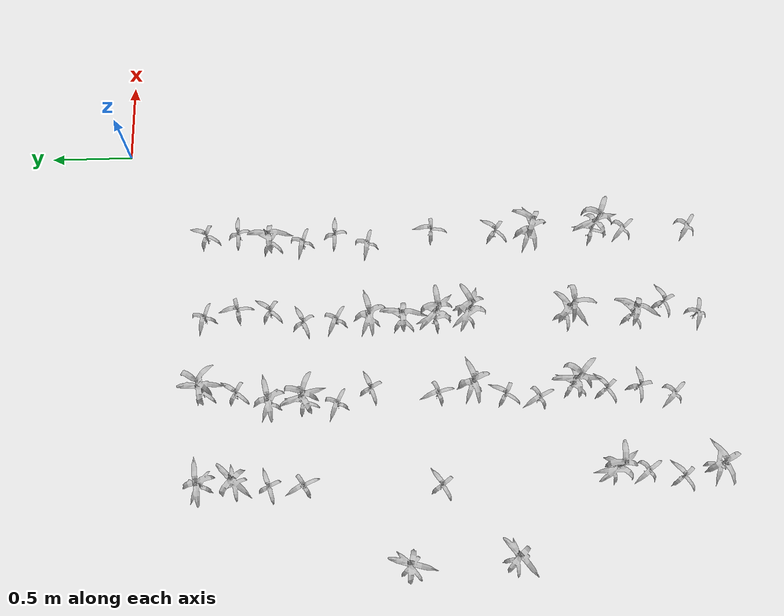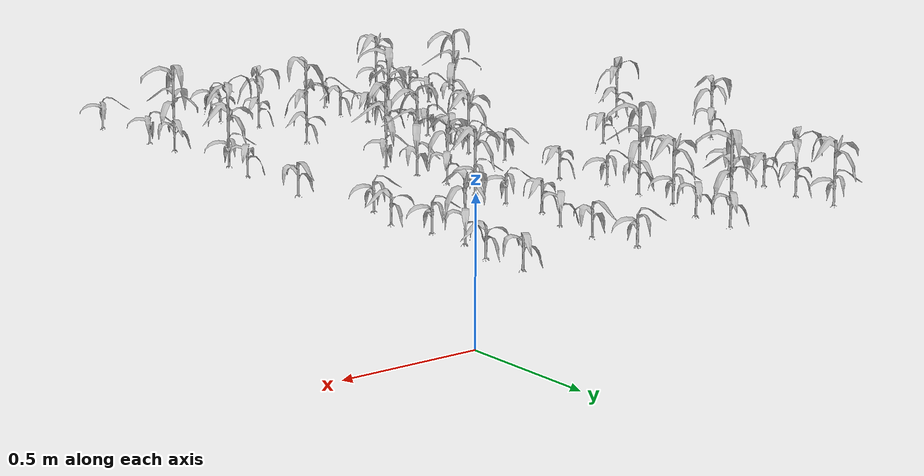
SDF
<sdf version="1.7">
 <world name="default">
  <model name="maize_-2.56067068068158_-2.2649999999999997">
   <static>1</static>
   <link name="link">
    <inertial>
     <mass>0.2</mass>
     <inertia>
      <ixx>0.166667</ixx>
      <ixy>0</ixy>
      <ixz>0</ixz>
      <iyy>0.166667</iyy>
      <iyz>0</iyz>
      <izz>0.166667</izz>
     </inertia>
    </inertial>
    <collision name="collision">
     <geometry><mesh><uri>model://corn_4/meshes/corn.dae</uri><scale>0.25 0.25 0.25</scale></mesh></geometry>
     <surface>
      <friction><ode><mu>0</mu><mu2>0</mu2></ode></friction>
      <contact><ode><kp>0</kp><kd>0</kd><max_vel>0</max_vel><min_depth>0.002</min_depth></ode></contact>
     </surface>
    </collision>
    <visual name="visual">
     <geometry><mesh><uri>model://corn_4/meshes/corn.dae</uri><scale>0.25 0.25 0.25</scale></mesh></geometry>
    </visual>
    <velocity_decay><linear>0</linear><angular>0</angular></velocity_decay>
   </link>
   <pose>-2.56067 -2.265 0.05 0 -0 0.150638</pose>
  </model>
  <model name="maize_-2.587947464671602_-1.6799999999999997">
   <static>1</static>
   <link name="link">
    <inertial>
     <mass>0.2</mass>
     <inertia>
      <ixx>0.166667</ixx>
      <ixy>0</ixy>
      <ixz>0</ixz>
      <iyy>0.166667</iyy>
      <iyz>0</iyz>
      <izz>0.166667</izz>
     </inertia>
    </inertial>
    <collision name="collision">
     <geometry><mesh><uri>model://corn_4/meshes/corn.dae</uri><scale>0.25 0.25 0.25</scale></mesh></geometry>
     <surface>
      <friction><ode><mu>0</mu><mu2>0</mu2></ode></friction>
      <contact><ode><kp>0</kp><kd>0</kd><max_vel>0</max_vel><min_depth>0.002</min_depth></ode></contact>
     </surface>
    </collision>
    <visual name="visual">
     <geometry><mesh><uri>model://corn_4/meshes/corn.dae</uri><scale>0.25 0.25 0.25</scale></mesh></geometry>
    </visual>
    <velocity_decay><linear>0</linear><angular>0</angular></velocity_decay>
   </link>
   <pose>-2.58795 -1.68 0.05 0 -0 0.765115</pose>
  </model>
  <model name="maize_-2.0695158106688814_-3.4349999999999996">
   <static>1</static>
   <link name="link">
    <inertial>
     <mass>0.2</mass>
     <inertia>
      <ixx>0.166667</ixx>
      <ixy>0</ixy>
      <ixz>0</ixz>
      <iyy>0.166667</iyy>
      <iyz>0</iyz>
      <izz>0.166667</izz>
     </inertia>
    </inertial>
    <collision name="collision">
     <geometry><mesh><uri>model://corn_4/meshes/corn.dae</uri><scale>0.25 0.25 0.25</scale></mesh></geometry>
     <surface>
      <friction><ode><mu>0</mu><mu2>0</mu2></ode></friction>
      <contact><ode><kp>0</kp><kd>0</kd><max_vel>0</max_vel><min_depth>0.002</min_depth></ode></contact>
     </surface>
    </collision>
    <visual name="visual">
     <geometry><mesh><uri>model://corn_4/meshes/corn.dae</uri><scale>0.25 0.25 0.25</scale></mesh></geometry>
    </visual>
    <velocity_decay><linear>0</linear><angular>0</angular></velocity_decay>
   </link>
   <pose>-2.06952 -3.435 0.05 0 -0 2.97833</pose>
  </model>
  <model name="maize_-2.1245888871789407_-3.2399999999999998">
   <static>1</static>
   <link name="link">
    <inertial>
     <mass>0.2</mass>
     <inertia>
      <ixx>0.166667</ixx>
      <ixy>0</ixy>
      <ixz>0</ixz>
      <iyy>0.166667</iyy>
      <iyz>0</iyz>
      <izz>0.166667</izz>
     </inertia>
    </inertial>
    <collision name="collision">
     <geometry><mesh><uri>model://corn_3/meshes/corn.dae</uri><scale>0.25 0.25 0.25</scale></mesh></geometry>
     <surface>
      <friction><ode><mu>0</mu><mu2>0</mu2></ode></friction>
      <contact><ode><kp>0</kp><kd>0</kd><max_vel>0</max_vel><min_depth>0.002</min_depth></ode></contact>
     </surface>
    </collision>
    <visual name="visual">
     <geometry><mesh><uri>model://corn_3/meshes/corn.dae</uri><scale>0.25 0.25 0.25</scale></mesh></geometry>
    </visual>
    <velocity_decay><linear>0</linear><angular>0</angular></velocity_decay>
   </link>
   <pose>-2.12459 -3.24 0.05 0 -0 0.665279</pose>
  </model>
  <model name="maize_-2.087982063824759_-3.045">
   <static>1</static>
   <link name="link">
    <inertial>
     <mass>0.2</mass>
     <inertia>
      <ixx>0.166667</ixx>
      <ixy>0</ixy>
      <ixz>0</ixz>
      <iyy>0.166667</iyy>
      <iyz>0</iyz>
      <izz>0.166667</izz>
     </inertia>
    </inertial>
    <collision name="collision">
     <geometry><mesh><uri>model://corn_3/meshes/corn.dae</uri><scale>0.25 0.25 0.25</scale></mesh></geometry>
     <surface>
      <friction><ode><mu>0</mu><mu2>0</mu2></ode></friction>
      <contact><ode><kp>0</kp><kd>0</kd><max_vel>0</max_vel><min_depth>0.002</min_depth></ode></contact>
     </surface>
    </collision>
    <visual name="visual">
     <geometry><mesh><uri>model://corn_3/meshes/corn.dae</uri><scale>0.25 0.25 0.25</scale></mesh></geometry>
    </visual>
    <velocity_decay><linear>0</linear><angular>0</angular></velocity_decay>
   </link>
   <pose>-2.08798 -3.045 0.05 0 -0 2.29323</pose>
  </model>
  <model name="maize_-2.0855864860959166_-2.8499999999999996">
   <static>1</static>
   <link name="link">
    <inertial>
     <mass>0.2</mass>
     <inertia>
      <ixx>0.166667</ixx>
      <ixy>0</ixy>
      <ixz>0</ixz>
      <iyy>0.166667</iyy>
      <iyz>0</iyz>
      <izz>0.166667</izz>
     </inertia>
    </inertial>
    <collision name="collision">
     <geometry><mesh><uri>model://corn_5/meshes/corn.dae</uri><scale>0.25 0.25 0.25</scale></mesh></geometry>
     <surface>
      <friction><ode><mu>0</mu><mu2>0</mu2></ode></friction>
      <contact><ode><kp>0</kp><kd>0</kd><max_vel>0</max_vel><min_depth>0.002</min_depth></ode></contact>
     </surface>
    </collision>
    <visual name="visual">
     <geometry><mesh><uri>model://corn_5/meshes/corn.dae</uri><scale>0.25 0.25 0.25</scale></mesh></geometry>
    </visual>
    <velocity_decay><linear>0</linear><angular>0</angular></velocity_decay>
   </link>
   <pose>-2.08559 -2.85 0.05 0 -0 1.66857</pose>
  </model>
  <model name="maize_-2.1451543387953897_-1.8749999999999996">
   <static>1</static>
   <link name="link">
    <inertial>
     <mass>0.2</mass>
     <inertia>
      <ixx>0.166667</ixx>
      <ixy>0</ixy>
      <ixz>0</ixz>
      <iyy>0.166667</iyy>
      <iyz>0</iyz>
      <izz>0.166667</izz>
     </inertia>
    </inertial>
    <collision name="collision">
     <geometry><mesh><uri>model://corn_3/meshes/corn.dae</uri><scale>0.25 0.25 0.25</scale></mesh></geometry>
     <surface>
      <friction><ode><mu>0</mu><mu2>0</mu2></ode></friction>
      <contact><ode><kp>0</kp><kd>0</kd><max_vel>0</max_vel><min_depth>0.002</min_depth></ode></contact>
     </surface>
    </collision>
    <visual name="visual">
     <geometry><mesh><uri>model://corn_3/meshes/corn.dae</uri><scale>0.25 0.25 0.25</scale></mesh></geometry>
    </visual>
    <velocity_decay><linear>0</linear><angular>0</angular></velocity_decay>
   </link>
   <pose>-2.14515 -1.875 0.05 0 -0 0.592628</pose>
  </model>
  <model name="maize_-2.1297416763319843_-1.0949999999999998">
   <static>1</static>
   <link name="link">
    <inertial>
     <mass>0.2</mass>
     <inertia>
      <ixx>0.166667</ixx>
      <ixy>0</ixy>
      <ixz>0</ixz>
      <iyy>0.166667</iyy>
      <iyz>0</iyz>
      <izz>0.166667</izz>
     </inertia>
    </inertial>
    <collision name="collision">
     <geometry><mesh><uri>model://corn_3/meshes/corn.dae</uri><scale>0.25 0.25 0.25</scale></mesh></geometry>
     <surface>
      <friction><ode><mu>0</mu><mu2>0</mu2></ode></friction>
      <contact><ode><kp>0</kp><kd>0</kd><max_vel>0</max_vel><min_depth>0.002</min_depth></ode></contact>
     </surface>
    </collision>
    <visual name="visual">
     <geometry><mesh><uri>model://corn_3/meshes/corn.dae</uri><scale>0.25 0.25 0.25</scale></mesh></geometry>
    </visual>
    <velocity_decay><linear>0</linear><angular>0</angular></velocity_decay>
   </link>
   <pose>-2.12974 -1.095 0.05 0 -0 2.08309</pose>
  </model>
  <model name="maize_-2.133350030080976_-0.8999999999999995">
   <static>1</static>
   <link name="link">
    <inertial>
     <mass>0.2</mass>
     <inertia>
      <ixx>0.166667</ixx>
      <ixy>0</ixy>
      <ixz>0</ixz>
      <iyy>0.166667</iyy>
      <iyz>0</iyz>
      <izz>0.166667</izz>
     </inertia>
    </inertial>
    <collision name="collision">
     <geometry><mesh><uri>model://corn_3/meshes/corn.dae</uri><scale>0.25 0.25 0.25</scale></mesh></geometry>
     <surface>
      <friction><ode><mu>0</mu><mu2>0</mu2></ode></friction>
      <contact><ode><kp>0</kp><kd>0</kd><max_vel>0</max_vel><min_depth>0.002</min_depth></ode></contact>
     </surface>
    </collision>
    <visual name="visual">
     <geometry><mesh><uri>model://corn_3/meshes/corn.dae</uri><scale>0.25 0.25 0.25</scale></mesh></geometry>
    </visual>
    <velocity_decay><linear>0</linear><angular>0</angular></velocity_decay>
   </link>
   <pose>-2.13335 -0.9 0.05 0 -0 0.362663</pose>
  </model>
  <model name="maize_-2.1117130886331696_-0.7050000000000001">
   <static>1</static>
   <link name="link">
    <inertial>
     <mass>0.2</mass>
     <inertia>
      <ixx>0.166667</ixx>
      <ixy>0</ixy>
      <ixz>0</ixz>
      <iyy>0.166667</iyy>
      <iyz>0</iyz>
      <izz>0.166667</izz>
     </inertia>
    </inertial>
    <collision name="collision">
     <geometry><mesh><uri>model://corn_4/meshes/corn.dae</uri><scale>0.25 0.25 0.25</scale></mesh></geometry>
     <surface>
      <friction><ode><mu>0</mu><mu2>0</mu2></ode></friction>
      <contact><ode><kp>0</kp><kd>0</kd><max_vel>0</max_vel><min_depth>0.002</min_depth></ode></contact>
     </surface>
    </collision>
    <visual name="visual">
     <geometry><mesh><uri>model://corn_4/meshes/corn.dae</uri><scale>0.25 0.25 0.25</scale></mesh></geometry>
    </visual>
    <velocity_decay><linear>0</linear><angular>0</angular></velocity_decay>
   </link>
   <pose>-2.11171 -0.705 0.05 0 -0 0.257828</pose>
  </model>
  <model name="maize_-2.1176374083535032_-0.5099999999999998">
   <static>1</static>
   <link name="link">
    <inertial>
     <mass>0.2</mass>
     <inertia>
      <ixx>0.166667</ixx>
      <ixy>0</ixy>
      <ixz>0</ixz>
      <iyy>0.166667</iyy>
      <iyz>0</iyz>
      <izz>0.166667</izz>
     </inertia>
    </inertial>
    <collision name="collision">
     <geometry><mesh><uri>model://corn_4/meshes/corn.dae</uri><scale>0.25 0.25 0.25</scale></mesh></geometry>
     <surface>
      <friction><ode><mu>0</mu><mu2>0</mu2></ode></friction>
      <contact><ode><kp>0</kp><kd>0</kd><max_vel>0</max_vel><min_depth>0.002</min_depth></ode></contact>
     </surface>
    </collision>
    <visual name="visual">
     <geometry><mesh><uri>model://corn_4/meshes/corn.dae</uri><scale>0.25 0.25 0.25</scale></mesh></geometry>
    </visual>
    <velocity_decay><linear>0</linear><angular>0</angular></velocity_decay>
   </link>
   <pose>-2.11764 -0.51 0.05 0 -0 2.72134</pose>
  </model>
  <model name="maize_-1.6435329429710228_-3.2399999999999998">
   <static>1</static>
   <link name="link">
    <inertial>
     <mass>0.2</mass>
     <inertia>
      <ixx>0.166667</ixx>
      <ixy>0</ixy>
      <ixz>0</ixz>
      <iyy>0.166667</iyy>
      <iyz>0</iyz>
      <izz>0.166667</izz>
     </inertia>
    </inertial>
    <collision name="collision">
     <geometry><mesh><uri>model://corn_3/meshes/corn.dae</uri><scale>0.25 0.25 0.25</scale></mesh></geometry>
     <surface>
      <friction><ode><mu>0</mu><mu2>0</mu2></ode></friction>
      <contact><ode><kp>0</kp><kd>0</kd><max_vel>0</max_vel><min_depth>0.002</min_depth></ode></contact>
     </surface>
    </collision>
    <visual name="visual">
     <geometry><mesh><uri>model://corn_3/meshes/corn.dae</uri><scale>0.25 0.25 0.25</scale></mesh></geometry>
    </visual>
    <velocity_decay><linear>0</linear><angular>0</angular></velocity_decay>
   </link>
   <pose>-1.64353 -3.24 0.05 0 -0 2.4443</pose>
  </model>
  <model name="maize_-1.5930801601935072_-3.045">
   <static>1</static>
   <link name="link">
    <inertial>
     <mass>0.2</mass>
     <inertia>
      <ixx>0.166667</ixx>
      <ixy>0</ixy>
      <ixz>0</ixz>
      <iyy>0.166667</iyy>
      <iyz>0</iyz>
      <izz>0.166667</izz>
     </inertia>
    </inertial>
    <collision name="collision">
     <geometry><mesh><uri>model://corn_3/meshes/corn.dae</uri><scale>0.25 0.25 0.25</scale></mesh></geometry>
     <surface>
      <friction><ode><mu>0</mu><mu2>0</mu2></ode></friction>
      <contact><ode><kp>0</kp><kd>0</kd><max_vel>0</max_vel><min_depth>0.002</min_depth></ode></contact>
     </surface>
    </collision>
    <visual name="visual">
     <geometry><mesh><uri>model://corn_3/meshes/corn.dae</uri><scale>0.25 0.25 0.25</scale></mesh></geometry>
    </visual>
    <velocity_decay><linear>0</linear><angular>0</angular></velocity_decay>
   </link>
   <pose>-1.59308 -3.045 0.05 0 -0 0.115923</pose>
  </model>
  <model name="maize_-1.606580619061356_-2.8499999999999996">
   <static>1</static>
   <link name="link">
    <inertial>
     <mass>0.2</mass>
     <inertia>
      <ixx>0.166667</ixx>
      <ixy>0</ixy>
      <ixz>0</ixz>
      <iyy>0.166667</iyy>
      <iyz>0</iyz>
      <izz>0.166667</izz>
     </inertia>
    </inertial>
    <collision name="collision">
     <geometry><mesh><uri>model://corn_3/meshes/corn.dae</uri><scale>0.25 0.25 0.25</scale></mesh></geometry>
     <surface>
      <friction><ode><mu>0</mu><mu2>0</mu2></ode></friction>
      <contact><ode><kp>0</kp><kd>0</kd><max_vel>0</max_vel><min_depth>0.002</min_depth></ode></contact>
     </surface>
    </collision>
    <visual name="visual">
     <geometry><mesh><uri>model://corn_3/meshes/corn.dae</uri><scale>0.25 0.25 0.25</scale></mesh></geometry>
    </visual>
    <velocity_decay><linear>0</linear><angular>0</angular></velocity_decay>
   </link>
   <pose>-1.60658 -2.85 0.05 0 -0 0.667125</pose>
  </model>
  <model name="maize_-1.5811275023182443_-2.655">
   <static>1</static>
   <link name="link">
    <inertial>
     <mass>0.2</mass>
     <inertia>
      <ixx>0.166667</ixx>
      <ixy>0</ixy>
      <ixz>0</ixz>
      <iyy>0.166667</iyy>
      <iyz>0</iyz>
      <izz>0.166667</izz>
     </inertia>
    </inertial>
    <collision name="collision">
     <geometry><mesh><uri>model://corn_5/meshes/corn.dae</uri><scale>0.25 0.25 0.25</scale></mesh></geometry>
     <surface>
      <friction><ode><mu>0</mu><mu2>0</mu2></ode></friction>
      <contact><ode><kp>0</kp><kd>0</kd><max_vel>0</max_vel><min_depth>0.002</min_depth></ode></contact>
     </surface>
    </collision>
    <visual name="visual">
     <geometry><mesh><uri>model://corn_5/meshes/corn.dae</uri><scale>0.25 0.25 0.25</scale></mesh></geometry>
    </visual>
    <velocity_decay><linear>0</linear><angular>0</angular></velocity_decay>
   </link>
   <pose>-1.58113 -2.655 0.05 0 -0 1.00223</pose>
  </model>
  <model name="maize_-1.6492030710428547_-2.46">
   <static>1</static>
   <link name="link">
    <inertial>
     <mass>0.2</mass>
     <inertia>
      <ixx>0.166667</ixx>
      <ixy>0</ixy>
      <ixz>0</ixz>
      <iyy>0.166667</iyy>
      <iyz>0</iyz>
      <izz>0.166667</izz>
     </inertia>
    </inertial>
    <collision name="collision">
     <geometry><mesh><uri>model://corn_3/meshes/corn.dae</uri><scale>0.25 0.25 0.25</scale></mesh></geometry>
     <surface>
      <friction><ode><mu>0</mu><mu2>0</mu2></ode></friction>
      <contact><ode><kp>0</kp><kd>0</kd><max_vel>0</max_vel><min_depth>0.002</min_depth></ode></contact>
     </surface>
    </collision>
    <visual name="visual">
     <geometry><mesh><uri>model://corn_3/meshes/corn.dae</uri><scale>0.25 0.25 0.25</scale></mesh></geometry>
    </visual>
    <velocity_decay><linear>0</linear><angular>0</angular></velocity_decay>
   </link>
   <pose>-1.6492 -2.46 0.05 0 -0 2.14681</pose>
  </model>
  <model name="maize_-1.6261241393688017_-2.2649999999999997">
   <static>1</static>
   <link name="link">
    <inertial>
     <mass>0.2</mass>
     <inertia>
      <ixx>0.166667</ixx>
      <ixy>0</ixy>
      <ixz>0</ixz>
      <iyy>0.166667</iyy>
      <iyz>0</iyz>
      <izz>0.166667</izz>
     </inertia>
    </inertial>
    <collision name="collision">
     <geometry><mesh><uri>model://corn_3/meshes/corn.dae</uri><scale>0.25 0.25 0.25</scale></mesh></geometry>
     <surface>
      <friction><ode><mu>0</mu><mu2>0</mu2></ode></friction>
      <contact><ode><kp>0</kp><kd>0</kd><max_vel>0</max_vel><min_depth>0.002</min_depth></ode></contact>
     </surface>
    </collision>
    <visual name="visual">
     <geometry><mesh><uri>model://corn_3/meshes/corn.dae</uri><scale>0.25 0.25 0.25</scale></mesh></geometry>
    </visual>
    <velocity_decay><linear>0</linear><angular>0</angular></velocity_decay>
   </link>
   <pose>-1.62612 -2.265 0.05 0 -0 1.05773</pose>
  </model>
  <model name="maize_-1.5709288194309647_-2.07">
   <static>1</static>
   <link name="link">
    <inertial>
     <mass>0.2</mass>
     <inertia>
      <ixx>0.166667</ixx>
      <ixy>0</ixy>
      <ixz>0</ixz>
      <iyy>0.166667</iyy>
      <iyz>0</iyz>
      <izz>0.166667</izz>
     </inertia>
    </inertial>
    <collision name="collision">
     <geometry><mesh><uri>model://corn_4/meshes/corn.dae</uri><scale>0.25 0.25 0.25</scale></mesh></geometry>
     <surface>
      <friction><ode><mu>0</mu><mu2>0</mu2></ode></friction>
      <contact><ode><kp>0</kp><kd>0</kd><max_vel>0</max_vel><min_depth>0.002</min_depth></ode></contact>
     </surface>
    </collision>
    <visual name="visual">
     <geometry><mesh><uri>model://corn_4/meshes/corn.dae</uri><scale>0.25 0.25 0.25</scale></mesh></geometry>
    </visual>
    <velocity_decay><linear>0</linear><angular>0</angular></velocity_decay>
   </link>
   <pose>-1.57093 -2.07 0.05 0 -0 2.8418</pose>
  </model>
  <model name="maize_-1.6097170149461688_-1.8749999999999996">
   <static>1</static>
   <link name="link">
    <inertial>
     <mass>0.2</mass>
     <inertia>
      <ixx>0.166667</ixx>
      <ixy>0</ixy>
      <ixz>0</ixz>
      <iyy>0.166667</iyy>
      <iyz>0</iyz>
      <izz>0.166667</izz>
     </inertia>
    </inertial>
    <collision name="collision">
     <geometry><mesh><uri>model://corn_3/meshes/corn.dae</uri><scale>0.25 0.25 0.25</scale></mesh></geometry>
     <surface>
      <friction><ode><mu>0</mu><mu2>0</mu2></ode></friction>
      <contact><ode><kp>0</kp><kd>0</kd><max_vel>0</max_vel><min_depth>0.002</min_depth></ode></contact>
     </surface>
    </collision>
    <visual name="visual">
     <geometry><mesh><uri>model://corn_3/meshes/corn.dae</uri><scale>0.25 0.25 0.25</scale></mesh></geometry>
    </visual>
    <velocity_decay><linear>0</linear><angular>0</angular></velocity_decay>
   </link>
   <pose>-1.60972 -1.875 0.05 0 -0 1.94583</pose>
  </model>
  <model name="maize_-1.5762306279719571_-1.4849999999999999">
   <static>1</static>
   <link name="link">
    <inertial>
     <mass>0.2</mass>
     <inertia>
      <ixx>0.166667</ixx>
      <ixy>0</ixy>
      <ixz>0</ixz>
      <iyy>0.166667</iyy>
      <iyz>0</iyz>
      <izz>0.166667</izz>
     </inertia>
    </inertial>
    <collision name="collision">
     <geometry><mesh><uri>model://corn_3/meshes/corn.dae</uri><scale>0.25 0.25 0.25</scale></mesh></geometry>
     <surface>
      <friction><ode><mu>0</mu><mu2>0</mu2></ode></friction>
      <contact><ode><kp>0</kp><kd>0</kd><max_vel>0</max_vel><min_depth>0.002</min_depth></ode></contact>
     </surface>
    </collision>
    <visual name="visual">
     <geometry><mesh><uri>model://corn_3/meshes/corn.dae</uri><scale>0.25 0.25 0.25</scale></mesh></geometry>
    </visual>
    <velocity_decay><linear>0</linear><angular>0</angular></velocity_decay>
   </link>
   <pose>-1.57623 -1.485 0.05 0 -0 0.40922</pose>
  </model>
  <model name="maize_-1.6579267696293596_-1.2899999999999996">
   <static>1</static>
   <link name="link">
    <inertial>
     <mass>0.2</mass>
     <inertia>
      <ixx>0.166667</ixx>
      <ixy>0</ixy>
      <ixz>0</ixz>
      <iyy>0.166667</iyy>
      <iyz>0</iyz>
      <izz>0.166667</izz>
     </inertia>
    </inertial>
    <collision name="collision">
     <geometry><mesh><uri>model://corn_3/meshes/corn.dae</uri><scale>0.25 0.25 0.25</scale></mesh></geometry>
     <surface>
      <friction><ode><mu>0</mu><mu2>0</mu2></ode></friction>
      <contact><ode><kp>0</kp><kd>0</kd><max_vel>0</max_vel><min_depth>0.002</min_depth></ode></contact>
     </surface>
    </collision>
    <visual name="visual">
     <geometry><mesh><uri>model://corn_3/meshes/corn.dae</uri><scale>0.25 0.25 0.25</scale></mesh></geometry>
    </visual>
    <velocity_decay><linear>0</linear><angular>0</angular></velocity_decay>
   </link>
   <pose>-1.65793 -1.29 0.05 0 -0 2.78606</pose>
  </model>
  <model name="maize_-1.6508238048924078_-1.0949999999999998">
   <static>1</static>
   <link name="link">
    <inertial>
     <mass>0.2</mass>
     <inertia>
      <ixx>0.166667</ixx>
      <ixy>0</ixy>
      <ixz>0</ixz>
      <iyy>0.166667</iyy>
      <iyz>0</iyz>
      <izz>0.166667</izz>
     </inertia>
    </inertial>
    <collision name="collision">
     <geometry><mesh><uri>model://corn_5/meshes/corn.dae</uri><scale>0.25 0.25 0.25</scale></mesh></geometry>
     <surface>
      <friction><ode><mu>0</mu><mu2>0</mu2></ode></friction>
      <contact><ode><kp>0</kp><kd>0</kd><max_vel>0</max_vel><min_depth>0.002</min_depth></ode></contact>
     </surface>
    </collision>
    <visual name="visual">
     <geometry><mesh><uri>model://corn_5/meshes/corn.dae</uri><scale>0.25 0.25 0.25</scale></mesh></geometry>
    </visual>
    <velocity_decay><linear>0</linear><angular>0</angular></velocity_decay>
   </link>
   <pose>-1.65082 -1.095 0.05 0 -0 1.38203</pose>
  </model>
  <model name="maize_-1.6518631181832415_-0.8999999999999995">
   <static>1</static>
   <link name="link">
    <inertial>
     <mass>0.2</mass>
     <inertia>
      <ixx>0.166667</ixx>
      <ixy>0</ixy>
      <ixz>0</ixz>
      <iyy>0.166667</iyy>
      <iyz>0</iyz>
      <izz>0.166667</izz>
     </inertia>
    </inertial>
    <collision name="collision">
     <geometry><mesh><uri>model://corn_4/meshes/corn.dae</uri><scale>0.25 0.25 0.25</scale></mesh></geometry>
     <surface>
      <friction><ode><mu>0</mu><mu2>0</mu2></ode></friction>
      <contact><ode><kp>0</kp><kd>0</kd><max_vel>0</max_vel><min_depth>0.002</min_depth></ode></contact>
     </surface>
    </collision>
    <visual name="visual">
     <geometry><mesh><uri>model://corn_4/meshes/corn.dae</uri><scale>0.25 0.25 0.25</scale></mesh></geometry>
    </visual>
    <velocity_decay><linear>0</linear><angular>0</angular></velocity_decay>
   </link>
   <pose>-1.65186 -0.9 0.05 0 -0 2.79874</pose>
  </model>
  <model name="maize_-1.5871818498414694_-0.7050000000000001">
   <static>1</static>
   <link name="link">
    <inertial>
     <mass>0.2</mass>
     <inertia>
      <ixx>0.166667</ixx>
      <ixy>0</ixy>
      <ixz>0</ixz>
      <iyy>0.166667</iyy>
      <iyz>0</iyz>
      <izz>0.166667</izz>
     </inertia>
    </inertial>
    <collision name="collision">
     <geometry><mesh><uri>model://corn_3/meshes/corn.dae</uri><scale>0.25 0.25 0.25</scale></mesh></geometry>
     <surface>
      <friction><ode><mu>0</mu><mu2>0</mu2></ode></friction>
      <contact><ode><kp>0</kp><kd>0</kd><max_vel>0</max_vel><min_depth>0.002</min_depth></ode></contact>
     </surface>
    </collision>
    <visual name="visual">
     <geometry><mesh><uri>model://corn_3/meshes/corn.dae</uri><scale>0.25 0.25 0.25</scale></mesh></geometry>
    </visual>
    <velocity_decay><linear>0</linear><angular>0</angular></velocity_decay>
   </link>
   <pose>-1.58718 -0.705 0.05 0 -0 0.982695</pose>
  </model>
  <model name="maize_-1.5757505179692748_-0.5099999999999998">
   <static>1</static>
   <link name="link">
    <inertial>
     <mass>0.2</mass>
     <inertia>
      <ixx>0.166667</ixx>
      <ixy>0</ixy>
      <ixz>0</ixz>
      <iyy>0.166667</iyy>
      <iyz>0</iyz>
      <izz>0.166667</izz>
     </inertia>
    </inertial>
    <collision name="collision">
     <geometry><mesh><uri>model://corn_5/meshes/corn.dae</uri><scale>0.25 0.25 0.25</scale></mesh></geometry>
     <surface>
      <friction><ode><mu>0</mu><mu2>0</mu2></ode></friction>
      <contact><ode><kp>0</kp><kd>0</kd><max_vel>0</max_vel><min_depth>0.002</min_depth></ode></contact>
     </surface>
    </collision>
    <visual name="visual">
     <geometry><mesh><uri>model://corn_5/meshes/corn.dae</uri><scale>0.25 0.25 0.25</scale></mesh></geometry>
    </visual>
    <velocity_decay><linear>0</linear><angular>0</angular></velocity_decay>
   </link>
   <pose>-1.57575 -0.51 0.05 0 -0 1.0254</pose>
  </model>
  <model name="maize_-1.1536177686863416_-3.4349999999999996">
   <static>1</static>
   <link name="link">
    <inertial>
     <mass>0.2</mass>
     <inertia>
      <ixx>0.166667</ixx>
      <ixy>0</ixy>
      <ixz>0</ixz>
      <iyy>0.166667</iyy>
      <iyz>0</iyz>
      <izz>0.166667</izz>
     </inertia>
    </inertial>
    <collision name="collision">
     <geometry><mesh><uri>model://corn_3/meshes/corn.dae</uri><scale>0.25 0.25 0.25</scale></mesh></geometry>
     <surface>
      <friction><ode><mu>0</mu><mu2>0</mu2></ode></friction>
      <contact><ode><kp>0</kp><kd>0</kd><max_vel>0</max_vel><min_depth>0.002</min_depth></ode></contact>
     </surface>
    </collision>
    <visual name="visual">
     <geometry><mesh><uri>model://corn_3/meshes/corn.dae</uri><scale>0.25 0.25 0.25</scale></mesh></geometry>
    </visual>
    <velocity_decay><linear>0</linear><angular>0</angular></velocity_decay>
   </link>
   <pose>-1.15362 -3.435 0.05 0 -0 3.01735</pose>
  </model>
  <model name="maize_-1.0809615215099735_-3.2399999999999998">
   <static>1</static>
   <link name="link">
    <inertial>
     <mass>0.2</mass>
     <inertia>
      <ixx>0.166667</ixx>
      <ixy>0</ixy>
      <ixz>0</ixz>
      <iyy>0.166667</iyy>
      <iyz>0</iyz>
      <izz>0.166667</izz>
     </inertia>
    </inertial>
    <collision name="collision">
     <geometry><mesh><uri>model://corn_3/meshes/corn.dae</uri><scale>0.25 0.25 0.25</scale></mesh></geometry>
     <surface>
      <friction><ode><mu>0</mu><mu2>0</mu2></ode></friction>
      <contact><ode><kp>0</kp><kd>0</kd><max_vel>0</max_vel><min_depth>0.002</min_depth></ode></contact>
     </surface>
    </collision>
    <visual name="visual">
     <geometry><mesh><uri>model://corn_3/meshes/corn.dae</uri><scale>0.25 0.25 0.25</scale></mesh></geometry>
    </visual>
    <velocity_decay><linear>0</linear><angular>0</angular></velocity_decay>
   </link>
   <pose>-1.08096 -3.24 0.05 0 -0 0.403806</pose>
  </model>
  <model name="maize_-1.1584517408194646_-3.045">
   <static>1</static>
   <link name="link">
    <inertial>
     <mass>0.2</mass>
     <inertia>
      <ixx>0.166667</ixx>
      <ixy>0</ixy>
      <ixz>0</ixz>
      <iyy>0.166667</iyy>
      <iyz>0</iyz>
      <izz>0.166667</izz>
     </inertia>
    </inertial>
    <collision name="collision">
     <geometry><mesh><uri>model://corn_4/meshes/corn.dae</uri><scale>0.25 0.25 0.25</scale></mesh></geometry>
     <surface>
      <friction><ode><mu>0</mu><mu2>0</mu2></ode></friction>
      <contact><ode><kp>0</kp><kd>0</kd><max_vel>0</max_vel><min_depth>0.002</min_depth></ode></contact>
     </surface>
    </collision>
    <visual name="visual">
     <geometry><mesh><uri>model://corn_4/meshes/corn.dae</uri><scale>0.25 0.25 0.25</scale></mesh></geometry>
    </visual>
    <velocity_decay><linear>0</linear><angular>0</angular></velocity_decay>
   </link>
   <pose>-1.15845 -3.045 0.05 0 -0 0.610277</pose>
  </model>
  <model name="maize_-1.1507786983029846_-2.655">
   <static>1</static>
   <link name="link">
    <inertial>
     <mass>0.2</mass>
     <inertia>
      <ixx>0.166667</ixx>
      <ixy>0</ixy>
      <ixz>0</ixz>
      <iyy>0.166667</iyy>
      <iyz>0</iyz>
      <izz>0.166667</izz>
     </inertia>
    </inertial>
    <collision name="collision">
     <geometry><mesh><uri>model://corn_5/meshes/corn.dae</uri><scale>0.25 0.25 0.25</scale></mesh></geometry>
     <surface>
      <friction><ode><mu>0</mu><mu2>0</mu2></ode></friction>
      <contact><ode><kp>0</kp><kd>0</kd><max_vel>0</max_vel><min_depth>0.002</min_depth></ode></contact>
     </surface>
    </collision>
    <visual name="visual">
     <geometry><mesh><uri>model://corn_5/meshes/corn.dae</uri><scale>0.25 0.25 0.25</scale></mesh></geometry>
    </visual>
    <velocity_decay><linear>0</linear><angular>0</angular></velocity_decay>
   </link>
   <pose>-1.15078 -2.655 0.05 0 -0 0.150068</pose>
  </model>
  <model name="maize_-1.1468928019338749_-2.07">
   <static>1</static>
   <link name="link">
    <inertial>
     <mass>0.2</mass>
     <inertia>
      <ixx>0.166667</ixx>
      <ixy>0</ixy>
      <ixz>0</ixz>
      <iyy>0.166667</iyy>
      <iyz>0</iyz>
      <izz>0.166667</izz>
     </inertia>
    </inertial>
    <collision name="collision">
     <geometry><mesh><uri>model://corn_5/meshes/corn.dae</uri><scale>0.25 0.25 0.25</scale></mesh></geometry>
     <surface>
      <friction><ode><mu>0</mu><mu2>0</mu2></ode></friction>
      <contact><ode><kp>0</kp><kd>0</kd><max_vel>0</max_vel><min_depth>0.002</min_depth></ode></contact>
     </surface>
    </collision>
    <visual name="visual">
     <geometry><mesh><uri>model://corn_5/meshes/corn.dae</uri><scale>0.25 0.25 0.25</scale></mesh></geometry>
    </visual>
    <velocity_decay><linear>0</linear><angular>0</angular></velocity_decay>
   </link>
   <pose>-1.14689 -2.07 0.05 0 -0 2.23971</pose>
  </model>
  <model name="maize_-1.1604203284265557_-1.8749999999999996">
   <static>1</static>
   <link name="link">
    <inertial>
     <mass>0.2</mass>
     <inertia>
      <ixx>0.166667</ixx>
      <ixy>0</ixy>
      <ixz>0</ixz>
      <iyy>0.166667</iyy>
      <iyz>0</iyz>
      <izz>0.166667</izz>
     </inertia>
    </inertial>
    <collision name="collision">
     <geometry><mesh><uri>model://corn_5/meshes/corn.dae</uri><scale>0.25 0.25 0.25</scale></mesh></geometry>
     <surface>
      <friction><ode><mu>0</mu><mu2>0</mu2></ode></friction>
      <contact><ode><kp>0</kp><kd>0</kd><max_vel>0</max_vel><min_depth>0.002</min_depth></ode></contact>
     </surface>
    </collision>
    <visual name="visual">
     <geometry><mesh><uri>model://corn_5/meshes/corn.dae</uri><scale>0.25 0.25 0.25</scale></mesh></geometry>
    </visual>
    <velocity_decay><linear>0</linear><angular>0</angular></velocity_decay>
   </link>
   <pose>-1.16042 -1.875 0.05 0 -0 1.85839</pose>
  </model>
  <model name="maize_-1.1635618662828073_-1.6799999999999997">
   <static>1</static>
   <link name="link">
    <inertial>
     <mass>0.2</mass>
     <inertia>
      <ixx>0.166667</ixx>
      <ixy>0</ixy>
      <ixz>0</ixz>
      <iyy>0.166667</iyy>
      <iyz>0</iyz>
      <izz>0.166667</izz>
     </inertia>
    </inertial>
    <collision name="collision">
     <geometry><mesh><uri>model://corn_4/meshes/corn.dae</uri><scale>0.25 0.25 0.25</scale></mesh></geometry>
     <surface>
      <friction><ode><mu>0</mu><mu2>0</mu2></ode></friction>
      <contact><ode><kp>0</kp><kd>0</kd><max_vel>0</max_vel><min_depth>0.002</min_depth></ode></contact>
     </surface>
    </collision>
    <visual name="visual">
     <geometry><mesh><uri>model://corn_4/meshes/corn.dae</uri><scale>0.25 0.25 0.25</scale></mesh></geometry>
    </visual>
    <velocity_decay><linear>0</linear><angular>0</angular></velocity_decay>
   </link>
   <pose>-1.16356 -1.68 0.05 0 -0 0.893585</pose>
  </model>
  <model name="maize_-1.1516301392224408_-1.4849999999999999">
   <static>1</static>
   <link name="link">
    <inertial>
     <mass>0.2</mass>
     <inertia>
      <ixx>0.166667</ixx>
      <ixy>0</ixy>
      <ixz>0</ixz>
      <iyy>0.166667</iyy>
      <iyz>0</iyz>
      <izz>0.166667</izz>
     </inertia>
    </inertial>
    <collision name="collision">
     <geometry><mesh><uri>model://corn_4/meshes/corn.dae</uri><scale>0.25 0.25 0.25</scale></mesh></geometry>
     <surface>
      <friction><ode><mu>0</mu><mu2>0</mu2></ode></friction>
      <contact><ode><kp>0</kp><kd>0</kd><max_vel>0</max_vel><min_depth>0.002</min_depth></ode></contact>
     </surface>
    </collision>
    <visual name="visual">
     <geometry><mesh><uri>model://corn_4/meshes/corn.dae</uri><scale>0.25 0.25 0.25</scale></mesh></geometry>
    </visual>
    <velocity_decay><linear>0</linear><angular>0</angular></velocity_decay>
   </link>
   <pose>-1.15163 -1.485 0.05 0 -0 2.77643</pose>
  </model>
  <model name="maize_-1.1501732446282908_-1.2899999999999996">
   <static>1</static>
   <link name="link">
    <inertial>
     <mass>0.2</mass>
     <inertia>
      <ixx>0.166667</ixx>
      <ixy>0</ixy>
      <ixz>0</ixz>
      <iyy>0.166667</iyy>
      <iyz>0</iyz>
      <izz>0.166667</izz>
     </inertia>
    </inertial>
    <collision name="collision">
     <geometry><mesh><uri>model://corn_3/meshes/corn.dae</uri><scale>0.25 0.25 0.25</scale></mesh></geometry>
     <surface>
      <friction><ode><mu>0</mu><mu2>0</mu2></ode></friction>
      <contact><ode><kp>0</kp><kd>0</kd><max_vel>0</max_vel><min_depth>0.002</min_depth></ode></contact>
     </surface>
    </collision>
    <visual name="visual">
     <geometry><mesh><uri>model://corn_3/meshes/corn.dae</uri><scale>0.25 0.25 0.25</scale></mesh></geometry>
    </visual>
    <velocity_decay><linear>0</linear><angular>0</angular></velocity_decay>
   </link>
   <pose>-1.15017 -1.29 0.05 0 -0 2.73695</pose>
  </model>
  <model name="maize_-1.1656106565086903_-1.0949999999999998">
   <static>1</static>
   <link name="link">
    <inertial>
     <mass>0.2</mass>
     <inertia>
      <ixx>0.166667</ixx>
      <ixy>0</ixy>
      <ixz>0</ixz>
      <iyy>0.166667</iyy>
      <iyz>0</iyz>
      <izz>0.166667</izz>
     </inertia>
    </inertial>
    <collision name="collision">
     <geometry><mesh><uri>model://corn_3/meshes/corn.dae</uri><scale>0.25 0.25 0.25</scale></mesh></geometry>
     <surface>
      <friction><ode><mu>0</mu><mu2>0</mu2></ode></friction>
      <contact><ode><kp>0</kp><kd>0</kd><max_vel>0</max_vel><min_depth>0.002</min_depth></ode></contact>
     </surface>
    </collision>
    <visual name="visual">
     <geometry><mesh><uri>model://corn_3/meshes/corn.dae</uri><scale>0.25 0.25 0.25</scale></mesh></geometry>
    </visual>
    <velocity_decay><linear>0</linear><angular>0</angular></velocity_decay>
   </link>
   <pose>-1.16561 -1.095 0.05 0 -0 0.472817</pose>
  </model>
  <model name="maize_-1.09193585236322_-0.8999999999999995">
   <static>1</static>
   <link name="link">
    <inertial>
     <mass>0.2</mass>
     <inertia>
      <ixx>0.166667</ixx>
      <ixy>0</ixy>
      <ixz>0</ixz>
      <iyy>0.166667</iyy>
      <iyz>0</iyz>
      <izz>0.166667</izz>
     </inertia>
    </inertial>
    <collision name="collision">
     <geometry><mesh><uri>model://corn_3/meshes/corn.dae</uri><scale>0.25 0.25 0.25</scale></mesh></geometry>
     <surface>
      <friction><ode><mu>0</mu><mu2>0</mu2></ode></friction>
      <contact><ode><kp>0</kp><kd>0</kd><max_vel>0</max_vel><min_depth>0.002</min_depth></ode></contact>
     </surface>
    </collision>
    <visual name="visual">
     <geometry><mesh><uri>model://corn_3/meshes/corn.dae</uri><scale>0.25 0.25 0.25</scale></mesh></geometry>
    </visual>
    <velocity_decay><linear>0</linear><angular>0</angular></velocity_decay>
   </link>
   <pose>-1.09194 -0.9 0.05 0 -0 0.926361</pose>
  </model>
  <model name="maize_-1.0791361779291466_-0.7050000000000001">
   <static>1</static>
   <link name="link">
    <inertial>
     <mass>0.2</mass>
     <inertia>
      <ixx>0.166667</ixx>
      <ixy>0</ixy>
      <ixz>0</ixz>
      <iyy>0.166667</iyy>
      <iyz>0</iyz>
      <izz>0.166667</izz>
     </inertia>
    </inertial>
    <collision name="collision">
     <geometry><mesh><uri>model://corn_3/meshes/corn.dae</uri><scale>0.25 0.25 0.25</scale></mesh></geometry>
     <surface>
      <friction><ode><mu>0</mu><mu2>0</mu2></ode></friction>
      <contact><ode><kp>0</kp><kd>0</kd><max_vel>0</max_vel><min_depth>0.002</min_depth></ode></contact>
     </surface>
    </collision>
    <visual name="visual">
     <geometry><mesh><uri>model://corn_3/meshes/corn.dae</uri><scale>0.25 0.25 0.25</scale></mesh></geometry>
    </visual>
    <velocity_decay><linear>0</linear><angular>0</angular></velocity_decay>
   </link>
   <pose>-1.07914 -0.705 0.05 0 -0 1.73205</pose>
  </model>
  <model name="maize_-1.1222528972278858_-0.5099999999999998">
   <static>1</static>
   <link name="link">
    <inertial>
     <mass>0.2</mass>
     <inertia>
      <ixx>0.166667</ixx>
      <ixy>0</ixy>
      <ixz>0</ixz>
      <iyy>0.166667</iyy>
      <iyz>0</iyz>
      <izz>0.166667</izz>
     </inertia>
    </inertial>
    <collision name="collision">
     <geometry><mesh><uri>model://corn_3/meshes/corn.dae</uri><scale>0.25 0.25 0.25</scale></mesh></geometry>
     <surface>
      <friction><ode><mu>0</mu><mu2>0</mu2></ode></friction>
      <contact><ode><kp>0</kp><kd>0</kd><max_vel>0</max_vel><min_depth>0.002</min_depth></ode></contact>
     </surface>
    </collision>
    <visual name="visual">
     <geometry><mesh><uri>model://corn_3/meshes/corn.dae</uri><scale>0.25 0.25 0.25</scale></mesh></geometry>
    </visual>
    <velocity_decay><linear>0</linear><angular>0</angular></velocity_decay>
   </link>
   <pose>-1.12225 -0.51 0.05 0 -0 2.94491</pose>
  </model>
  <model name="maize_-0.5982293323057983_-3.4349999999999996">
   <static>1</static>
   <link name="link">
    <inertial>
     <mass>0.2</mass>
     <inertia>
      <ixx>0.166667</ixx>
      <ixy>0</ixy>
      <ixz>0</ixz>
      <iyy>0.166667</iyy>
      <iyz>0</iyz>
      <izz>0.166667</izz>
     </inertia>
    </inertial>
    <collision name="collision">
     <geometry><mesh><uri>model://corn_3/meshes/corn.dae</uri><scale>0.25 0.25 0.25</scale></mesh></geometry>
     <surface>
      <friction><ode><mu>0</mu><mu2>0</mu2></ode></friction>
      <contact><ode><kp>0</kp><kd>0</kd><max_vel>0</max_vel><min_depth>0.002</min_depth></ode></contact>
     </surface>
    </collision>
    <visual name="visual">
     <geometry><mesh><uri>model://corn_3/meshes/corn.dae</uri><scale>0.25 0.25 0.25</scale></mesh></geometry>
    </visual>
    <velocity_decay><linear>0</linear><angular>0</angular></velocity_decay>
   </link>
   <pose>-0.598229 -3.435 0.05 0 -0 2.66106</pose>
  </model>
  <model name="maize_-0.6085336543522744_-3.045">
   <static>1</static>
   <link name="link">
    <inertial>
     <mass>0.2</mass>
     <inertia>
      <ixx>0.166667</ixx>
      <ixy>0</ixy>
      <ixz>0</ixz>
      <iyy>0.166667</iyy>
      <iyz>0</iyz>
      <izz>0.166667</izz>
     </inertia>
    </inertial>
    <collision name="collision">
     <geometry><mesh><uri>model://corn_3/meshes/corn.dae</uri><scale>0.25 0.25 0.25</scale></mesh></geometry>
     <surface>
      <friction><ode><mu>0</mu><mu2>0</mu2></ode></friction>
      <contact><ode><kp>0</kp><kd>0</kd><max_vel>0</max_vel><min_depth>0.002</min_depth></ode></contact>
     </surface>
    </collision>
    <visual name="visual">
     <geometry><mesh><uri>model://corn_3/meshes/corn.dae</uri><scale>0.25 0.25 0.25</scale></mesh></geometry>
    </visual>
    <velocity_decay><linear>0</linear><angular>0</angular></velocity_decay>
   </link>
   <pose>-0.608534 -3.045 0.05 0 -0 2.44764</pose>
  </model>
  <model name="maize_-0.6156196332456434_-2.8499999999999996">
   <static>1</static>
   <link name="link">
    <inertial>
     <mass>0.2</mass>
     <inertia>
      <ixx>0.166667</ixx>
      <ixy>0</ixy>
      <ixz>0</ixz>
      <iyy>0.166667</iyy>
      <iyz>0</iyz>
      <izz>0.166667</izz>
     </inertia>
    </inertial>
    <collision name="collision">
     <geometry><mesh><uri>model://corn_5/meshes/corn.dae</uri><scale>0.25 0.25 0.25</scale></mesh></geometry>
     <surface>
      <friction><ode><mu>0</mu><mu2>0</mu2></ode></friction>
      <contact><ode><kp>0</kp><kd>0</kd><max_vel>0</max_vel><min_depth>0.002</min_depth></ode></contact>
     </surface>
    </collision>
    <visual name="visual">
     <geometry><mesh><uri>model://corn_5/meshes/corn.dae</uri><scale>0.25 0.25 0.25</scale></mesh></geometry>
    </visual>
    <velocity_decay><linear>0</linear><angular>0</angular></velocity_decay>
   </link>
   <pose>-0.61562 -2.85 0.05 0 -0 1.3757</pose>
  </model>
  <model name="maize_-0.639963307768459_-2.46">
   <static>1</static>
   <link name="link">
    <inertial>
     <mass>0.2</mass>
     <inertia>
      <ixx>0.166667</ixx>
      <ixy>0</ixy>
      <ixz>0</ixz>
      <iyy>0.166667</iyy>
      <iyz>0</iyz>
      <izz>0.166667</izz>
     </inertia>
    </inertial>
    <collision name="collision">
     <geometry><mesh><uri>model://corn_5/meshes/corn.dae</uri><scale>0.25 0.25 0.25</scale></mesh></geometry>
     <surface>
      <friction><ode><mu>0</mu><mu2>0</mu2></ode></friction>
      <contact><ode><kp>0</kp><kd>0</kd><max_vel>0</max_vel><min_depth>0.002</min_depth></ode></contact>
     </surface>
    </collision>
    <visual name="visual">
     <geometry><mesh><uri>model://corn_5/meshes/corn.dae</uri><scale>0.25 0.25 0.25</scale></mesh></geometry>
    </visual>
    <velocity_decay><linear>0</linear><angular>0</angular></velocity_decay>
   </link>
   <pose>-0.639963 -2.46 0.05 0 -0 2.82126</pose>
  </model>
  <model name="maize_-0.6052509370568907_-2.2649999999999997">
   <static>1</static>
   <link name="link">
    <inertial>
     <mass>0.2</mass>
     <inertia>
      <ixx>0.166667</ixx>
      <ixy>0</ixy>
      <ixz>0</ixz>
      <iyy>0.166667</iyy>
      <iyz>0</iyz>
      <izz>0.166667</izz>
     </inertia>
    </inertial>
    <collision name="collision">
     <geometry><mesh><uri>model://corn_3/meshes/corn.dae</uri><scale>0.25 0.25 0.25</scale></mesh></geometry>
     <surface>
      <friction><ode><mu>0</mu><mu2>0</mu2></ode></friction>
      <contact><ode><kp>0</kp><kd>0</kd><max_vel>0</max_vel><min_depth>0.002</min_depth></ode></contact>
     </surface>
    </collision>
    <visual name="visual">
     <geometry><mesh><uri>model://corn_3/meshes/corn.dae</uri><scale>0.25 0.25 0.25</scale></mesh></geometry>
    </visual>
    <velocity_decay><linear>0</linear><angular>0</angular></velocity_decay>
   </link>
   <pose>-0.605251 -2.265 0.05 0 -0 0.873594</pose>
  </model>
  <model name="maize_-0.5891973025446369_-1.8749999999999996">
   <static>1</static>
   <link name="link">
    <inertial>
     <mass>0.2</mass>
     <inertia>
      <ixx>0.166667</ixx>
      <ixy>0</ixy>
      <ixz>0</ixz>
      <iyy>0.166667</iyy>
      <iyz>0</iyz>
      <izz>0.166667</izz>
     </inertia>
    </inertial>
    <collision name="collision">
     <geometry><mesh><uri>model://corn_3/meshes/corn.dae</uri><scale>0.25 0.25 0.25</scale></mesh></geometry>
     <surface>
      <friction><ode><mu>0</mu><mu2>0</mu2></ode></friction>
      <contact><ode><kp>0</kp><kd>0</kd><max_vel>0</max_vel><min_depth>0.002</min_depth></ode></contact>
     </surface>
    </collision>
    <visual name="visual">
     <geometry><mesh><uri>model://corn_3/meshes/corn.dae</uri><scale>0.25 0.25 0.25</scale></mesh></geometry>
    </visual>
    <velocity_decay><linear>0</linear><angular>0</angular></velocity_decay>
   </link>
   <pose>-0.589197 -1.875 0.05 0 -0 1.55574</pose>
  </model>
  <model name="maize_-0.670127811143806_-1.4849999999999999">
   <static>1</static>
   <link name="link">
    <inertial>
     <mass>0.2</mass>
     <inertia>
      <ixx>0.166667</ixx>
      <ixy>0</ixy>
      <ixz>0</ixz>
      <iyy>0.166667</iyy>
      <iyz>0</iyz>
      <izz>0.166667</izz>
     </inertia>
    </inertial>
    <collision name="collision">
     <geometry><mesh><uri>model://corn_3/meshes/corn.dae</uri><scale>0.25 0.25 0.25</scale></mesh></geometry>
     <surface>
      <friction><ode><mu>0</mu><mu2>0</mu2></ode></friction>
      <contact><ode><kp>0</kp><kd>0</kd><max_vel>0</max_vel><min_depth>0.002</min_depth></ode></contact>
     </surface>
    </collision>
    <visual name="visual">
     <geometry><mesh><uri>model://corn_3/meshes/corn.dae</uri><scale>0.25 0.25 0.25</scale></mesh></geometry>
    </visual>
    <velocity_decay><linear>0</linear><angular>0</angular></velocity_decay>
   </link>
   <pose>-0.670128 -1.485 0.05 0 -0 3.00589</pose>
  </model>
  <model name="maize_-0.6090045939093728_-1.2899999999999996">
   <static>1</static>
   <link name="link">
    <inertial>
     <mass>0.2</mass>
     <inertia>
      <ixx>0.166667</ixx>
      <ixy>0</ixy>
      <ixz>0</ixz>
      <iyy>0.166667</iyy>
      <iyz>0</iyz>
      <izz>0.166667</izz>
     </inertia>
    </inertial>
    <collision name="collision">
     <geometry><mesh><uri>model://corn_3/meshes/corn.dae</uri><scale>0.25 0.25 0.25</scale></mesh></geometry>
     <surface>
      <friction><ode><mu>0</mu><mu2>0</mu2></ode></friction>
      <contact><ode><kp>0</kp><kd>0</kd><max_vel>0</max_vel><min_depth>0.002</min_depth></ode></contact>
     </surface>
    </collision>
    <visual name="visual">
     <geometry><mesh><uri>model://corn_3/meshes/corn.dae</uri><scale>0.25 0.25 0.25</scale></mesh></geometry>
    </visual>
    <velocity_decay><linear>0</linear><angular>0</angular></velocity_decay>
   </link>
   <pose>-0.609005 -1.29 0.05 0 -0 0.027237</pose>
  </model>
  <model name="maize_-0.6518438415189128_-1.0949999999999998">
   <static>1</static>
   <link name="link">
    <inertial>
     <mass>0.2</mass>
     <inertia>
      <ixx>0.166667</ixx>
      <ixy>0</ixy>
      <ixz>0</ixz>
      <iyy>0.166667</iyy>
      <iyz>0</iyz>
      <izz>0.166667</izz>
     </inertia>
    </inertial>
    <collision name="collision">
     <geometry><mesh><uri>model://corn_3/meshes/corn.dae</uri><scale>0.25 0.25 0.25</scale></mesh></geometry>
     <surface>
      <friction><ode><mu>0</mu><mu2>0</mu2></ode></friction>
      <contact><ode><kp>0</kp><kd>0</kd><max_vel>0</max_vel><min_depth>0.002</min_depth></ode></contact>
     </surface>
    </collision>
    <visual name="visual">
     <geometry><mesh><uri>model://corn_3/meshes/corn.dae</uri><scale>0.25 0.25 0.25</scale></mesh></geometry>
    </visual>
    <velocity_decay><linear>0</linear><angular>0</angular></velocity_decay>
   </link>
   <pose>-0.651844 -1.095 0.05 0 -0 2.94764</pose>
  </model>
  <model name="maize_-0.6516521756499302_-0.8999999999999995">
   <static>1</static>
   <link name="link">
    <inertial>
     <mass>0.2</mass>
     <inertia>
      <ixx>0.166667</ixx>
      <ixy>0</ixy>
      <ixz>0</ixz>
      <iyy>0.166667</iyy>
      <iyz>0</iyz>
      <izz>0.166667</izz>
     </inertia>
    </inertial>
    <collision name="collision">
     <geometry><mesh><uri>model://corn_4/meshes/corn.dae</uri><scale>0.25 0.25 0.25</scale></mesh></geometry>
     <surface>
      <friction><ode><mu>0</mu><mu2>0</mu2></ode></friction>
      <contact><ode><kp>0</kp><kd>0</kd><max_vel>0</max_vel><min_depth>0.002</min_depth></ode></contact>
     </surface>
    </collision>
    <visual name="visual">
     <geometry><mesh><uri>model://corn_4/meshes/corn.dae</uri><scale>0.25 0.25 0.25</scale></mesh></geometry>
    </visual>
    <velocity_decay><linear>0</linear><angular>0</angular></velocity_decay>
   </link>
   <pose>-0.651652 -0.9 0.05 0 -0 0.953348</pose>
  </model>
  <model name="maize_-0.593119803235598_-0.7050000000000001">
   <static>1</static>
   <link name="link">
    <inertial>
     <mass>0.2</mass>
     <inertia>
      <ixx>0.166667</ixx>
      <ixy>0</ixy>
      <ixz>0</ixz>
      <iyy>0.166667</iyy>
      <iyz>0</iyz>
      <izz>0.166667</izz>
     </inertia>
    </inertial>
    <collision name="collision">
     <geometry><mesh><uri>model://corn_3/meshes/corn.dae</uri><scale>0.25 0.25 0.25</scale></mesh></geometry>
     <surface>
      <friction><ode><mu>0</mu><mu2>0</mu2></ode></friction>
      <contact><ode><kp>0</kp><kd>0</kd><max_vel>0</max_vel><min_depth>0.002</min_depth></ode></contact>
     </surface>
    </collision>
    <visual name="visual">
     <geometry><mesh><uri>model://corn_3/meshes/corn.dae</uri><scale>0.25 0.25 0.25</scale></mesh></geometry>
    </visual>
    <velocity_decay><linear>0</linear><angular>0</angular></velocity_decay>
   </link>
   <pose>-0.59312 -0.705 0.05 0 -0 0.082235</pose>
  </model>
  <model name="maize_-0.6013868303461187_-0.5099999999999998">
   <static>1</static>
   <link name="link">
    <inertial>
     <mass>0.2</mass>
     <inertia>
      <ixx>0.166667</ixx>
      <ixy>0</ixy>
      <ixz>0</ixz>
      <iyy>0.166667</iyy>
      <iyz>0</iyz>
      <izz>0.166667</izz>
     </inertia>
    </inertial>
    <collision name="collision">
     <geometry><mesh><uri>model://corn_3/meshes/corn.dae</uri><scale>0.25 0.25 0.25</scale></mesh></geometry>
     <surface>
      <friction><ode><mu>0</mu><mu2>0</mu2></ode></friction>
      <contact><ode><kp>0</kp><kd>0</kd><max_vel>0</max_vel><min_depth>0.002</min_depth></ode></contact>
     </surface>
    </collision>
    <visual name="visual">
     <geometry><mesh><uri>model://corn_3/meshes/corn.dae</uri><scale>0.25 0.25 0.25</scale></mesh></geometry>
    </visual>
    <velocity_decay><linear>0</linear><angular>0</angular></velocity_decay>
   </link>
   <pose>-0.601387 -0.51 0.05 0 -0 1.16542</pose>
  </model>
 </world>
</sdf>
